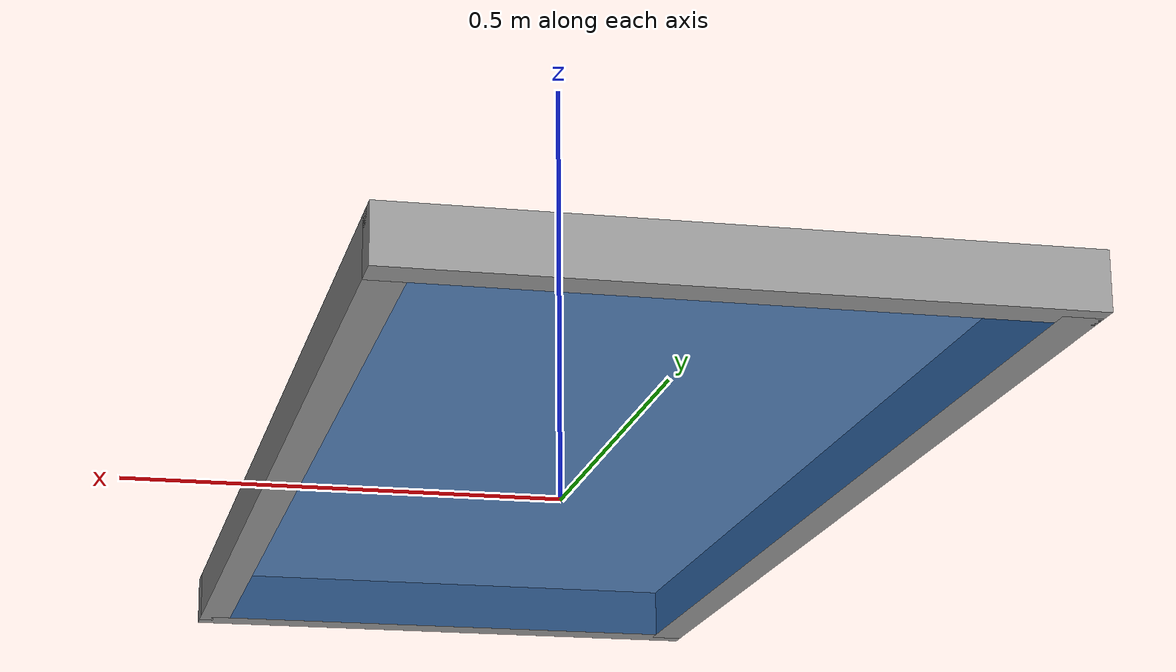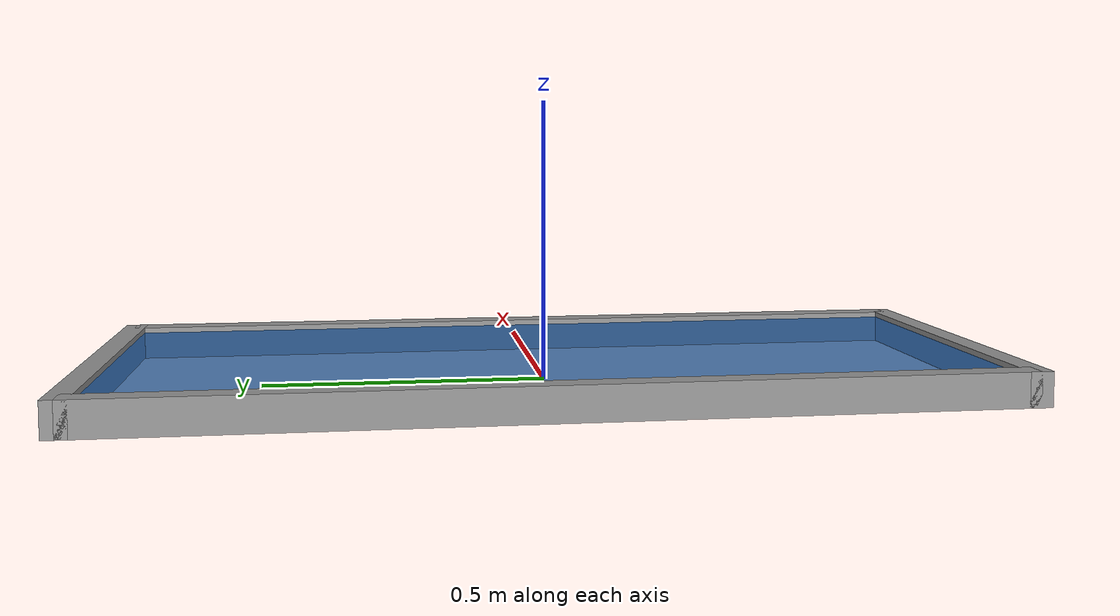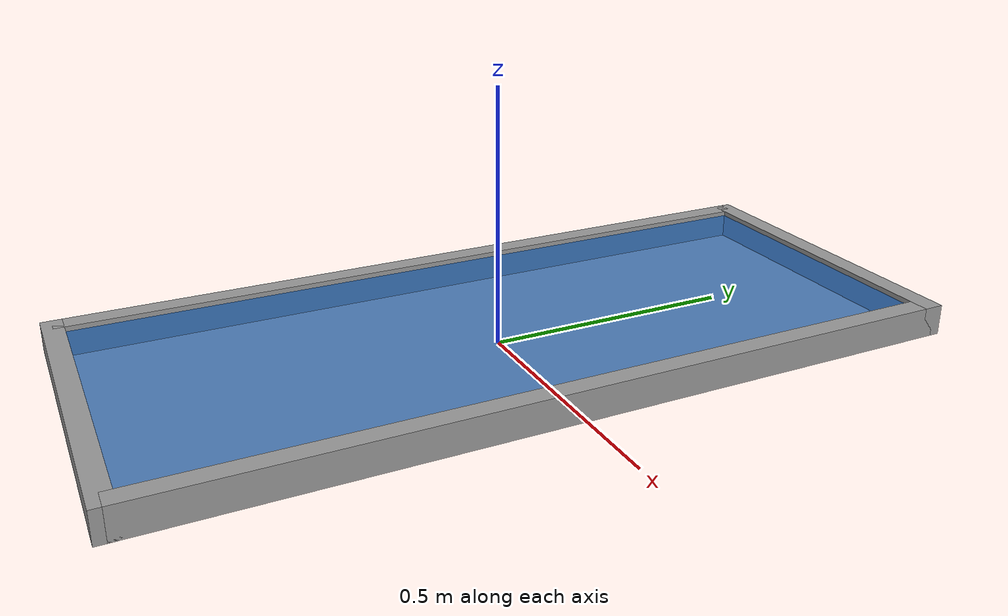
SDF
<?xml version="1.0" ?>
<sdf version="1.8">
  <model name="water_pool">
    <static>true</static>

    <link name="base_link">
      <!-- Water surface -->
      <visual name="water_visual">
        <pose>0 0 0.025 0 0 0</pose>
        <geometry>
          <box><size>0.6 1.5 0.05</size></box>
        </geometry>
        <material>
          <ambient>0.1 0.3 0.6 0.8</ambient>
          <diffuse>0.15 0.4 0.7 0.8</diffuse>
          <specular>0.4 0.4 0.4 1</specular>
        </material>
      </visual>

      <!-- Rim - long side 1 (+X) -->
      <visual name="rim_px">
        <pose>0.32 0 0.03 0 0 0</pose>
        <geometry>
          <box><size>0.04 1.54 0.06</size></box>
        </geometry>
        <material>
          <ambient>0.5 0.5 0.5 1</ambient>
          <diffuse>0.6 0.6 0.6 1</diffuse>
        </material>
      </visual>

      <!-- Rim - long side 2 (-X) -->
      <visual name="rim_nx">
        <pose>-0.32 0 0.03 0 0 0</pose>
        <geometry>
          <box><size>0.04 1.54 0.06</size></box>
        </geometry>
        <material>
          <ambient>0.5 0.5 0.5 1</ambient>
          <diffuse>0.6 0.6 0.6 1</diffuse>
        </material>
      </visual>

      <!-- Rim - short side 1 (+Y) -->
      <visual name="rim_py">
        <pose>0 0.77 0.03 0 0 0</pose>
        <geometry>
          <box><size>0.68 0.04 0.06</size></box>
        </geometry>
        <material>
          <ambient>0.5 0.5 0.5 1</ambient>
          <diffuse>0.6 0.6 0.6 1</diffuse>
        </material>
      </visual>

      <!-- Rim - short side 2 (-Y) -->
      <visual name="rim_ny">
        <pose>0 -0.77 0.03 0 0 0</pose>
        <geometry>
          <box><size>0.68 0.04 0.06</size></box>
        </geometry>
        <material>
          <ambient>0.5 0.5 0.5 1</ambient>
          <diffuse>0.6 0.6 0.6 1</diffuse>
        </material>
      </visual>

      <!-- Collision for the rim -->
      <collision name="rim_collision">
        <pose>0 0 0.03 0 0 0</pose>
        <geometry>
          <box><size>0.68 1.54 0.06</size></box>
        </geometry>
      </collision>
    </link>
  </model>
</sdf>
